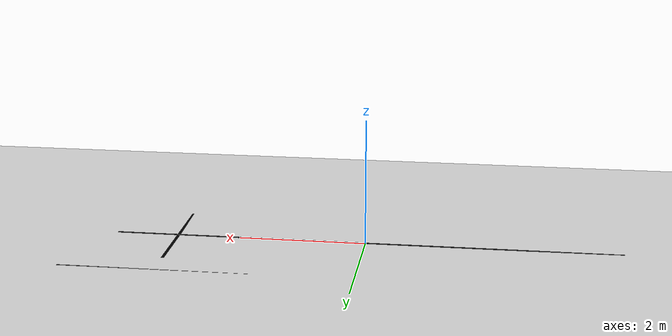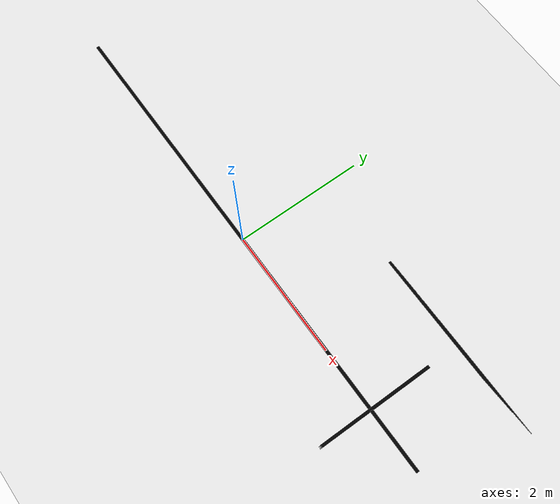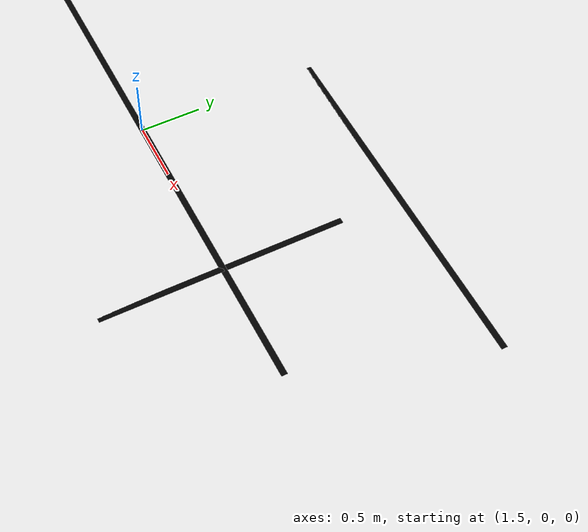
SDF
<?xml version="1.0" ?>
<sdf version="1.4">
  <world name="default">

    <include>
      <uri>model://ground_plane</uri>
    </include>

    <include>
      <uri>model://sun</uri>
    </include>

    <!-- Line Track Model -->
    <model name="line_track">
      <static>true</static>
      <link name="track_link">
        <visual name="track_visual">
          <pose>0 0 0.001 0 0 0</pose>
          <geometry>
            <plane>
              <normal>0 0 1</normal>
              <size>10 10</size>
            </plane>
          </geometry>
          <material>
            <script>
              <uri>model://line_track/materials/scripts</uri>
              <uri>model://line_track/materials/textures</uri>
              <name>LineTrack/Track</name>
            </script>
          </material>
        </visual>
        <collision name="track_collision">
          <pose>0 0 0.001 0 0 0</pose>
          <geometry>
            <plane>
              <normal>0 0 1</normal>
              <size>10 10</size>
            </plane>
          </geometry>
        </collision>
      </link>
    </model>

    <!-- White ground with black lines -->
    <model name="simple_track">
      <static>true</static>
      <link name="link">
        <visual name="visual">
          <geometry>
            <plane>
              <normal>0 0 1</normal>
              <size>20 20</size>
            </plane>
          </geometry>
          <material>
            <ambient>0.9 0.9 0.9 1</ambient>
            <diffuse>0.9 0.9 0.9 1</diffuse>
          </material>
        </visual>
      </link>
    </model>

    <!-- Straight line -->
    <model name="line1">
      <static>true</static>
      <pose>0 0 0.005 0 0 0</pose>
      <link name="link">
        <visual name="visual">
          <geometry>
            <box>
              <size>8 0.05 0.01</size>
            </box>
          </geometry>
          <material>
            <ambient>0 0 0 1</ambient>
            <diffuse>0 0 0 1</diffuse>
          </material>
        </visual>
      </link>
    </model>

    <!-- T-junction horizontal line -->
    <model name="line2">
      <static>true</static>
      <pose>3 0 0.005 0 0 1.5708</pose>
      <link name="link">
        <visual name="visual">
          <geometry>
            <box>
              <size>2 0.05 0.01</size>
            </box>
          </geometry>
          <material>
            <ambient>0 0 0 1</ambient>
            <diffuse>0 0 0 1</diffuse>
          </material>
        </visual>
      </link>
    </model>

    <!-- Left path from junction -->
    <model name="line3">
      <static>true</static>
      <pose>3 1.5 0.005 0 0 0</pose>
      <link name="link">
        <visual name="visual">
          <geometry>
            <box>
              <size>3 0.05 0.01</size>
            </box>
          </geometry>
          <material>
            <ambient>0 0 0 1</ambient>
            <diffuse>0 0 0 1</diffuse>
          </material>
        </visual>
      </link>
    </model>

  </world>
</sdf>
